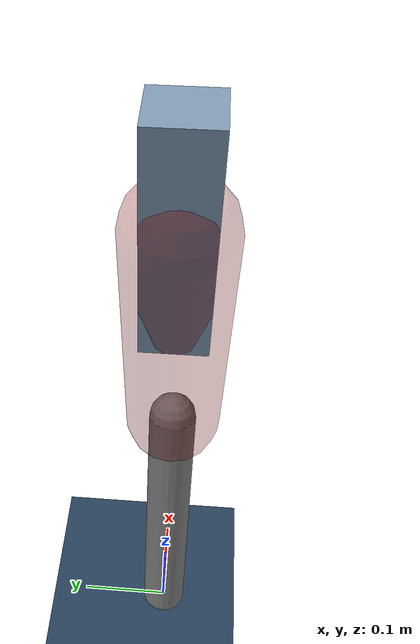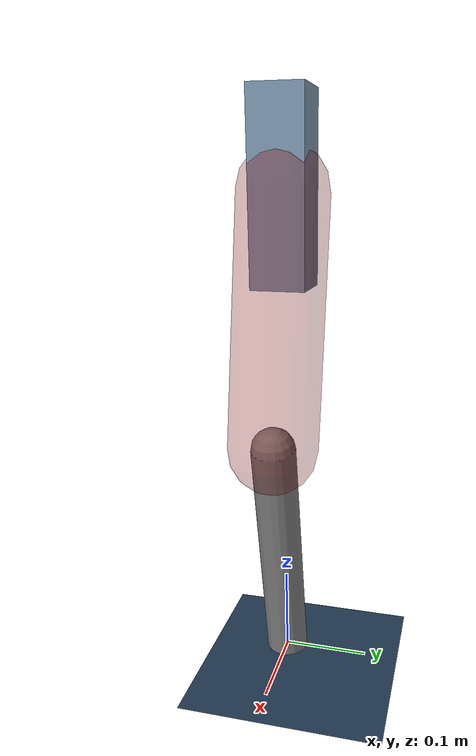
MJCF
<mujoco model="Hopper2D">
	<compiler inertiafromgeom="true" angle="radian" />
	<option timestep="0.001" integrator="implicit" cone="elliptic" solver="Newton" tolerance="1e-10" />

	<default>
		<geom contype="1" conaffinity="1" condim="3" friction="2 0.005 0.0001" solref="0.005 1" />
		<joint limited="true" damping="0.1" />
	</default>

	<asset>
		<texture name="skybox" type="skybox" builtin="gradient" rgb1=".4 .6 .8" rgb2="0 0 0" width="800" height="800" />
		<texture name="grid" type="2d" builtin="checker" rgb1=".1 .2 .3" rgb2=".2 .3 .4" width="300" height="300" mark="edge" markrgb=".2 .3 .4" />
		<material name="ground" texture="grid" texrepeat="1 1" texuniform="true" reflectance="0.1" />
		<material name="leg" rgba="0.5 0.6 0.7 1" />
	</asset>

	<worldbody>

		<geom name="floor" type="plane" size="5 5 0.25" material="ground" />

		<light directional="false" diffuse="0.8 0.8 0.8" specular="0.3 0.3 0.3" pos="0 0 2" dir="0 0 -1" />
		<light mode="targetbodycom" target="base" directional="false" diffuse="0.8 0.8 0.8" specular="0.3 0.3 0.3" pos="0 0 2" dir="0 0 -1" />

		<camera name="fixed" pos="0 -2 1" xyaxes="1 0 0 0 0 1" />
		<camera name="tracking" mode="trackcom" pos="0 -3 1" />

		<body name="root" pos="0 0 0.5575047183181159">
			<joint name="slide_x" type="slide" axis="1 0 0" range="-100 100" />
			<joint name="slide_z" type="slide" axis="0 0 1" range="0 10" />

			<body name="base" pos="0 0 0">
				<geom name="torso" type="box" size="0.03 0.03 0.1" mass="1.813" material="leg" />

				<body name="link1" pos="0 0 0" euler="0 1.376061410947468 0">
					<joint type="hinge" axis="0 -1 0" pos="0 0 0" name="hinge1" limited="true" range="-3.14 3.14" stiffness="0" damping="0.1" />
					<geom name="thigh" type="capsule" fromto="0 0 0 0.2738928987416451 0 0" size="0.05" rgba="0.5 0 0 0.3" mass="0.9189215367282771" />

					<body name="link2" pos="0.2738928987416451 0 0" euler="0 0.3762404760294689 0">
						<joint type="hinge" axis="0 -1 0" pos="0 0 0" name="hinge2" limited="true" range="-3.14 3.14" stiffness="0" damping="0.1" />
						<geom name="shank" type="capsule" fromto="0 0 0 0.29361181957647087 0 0" size="0.025" mass="0.4781894556611767" />

					</body>
				</body>
			</body>
		</body>
	</worldbody>

	<actuator>
		<motor name="torque1" joint="hinge1" ctrlrange="-51.25588463572311 51.25588463572311" ctrllimited="true" gear="1" />
		<motor name="torque2" joint="hinge2" ctrlrange="-14.35306074829182 14.35306074829182" ctrllimited="true" gear="1" />
	</actuator>
</mujoco>
